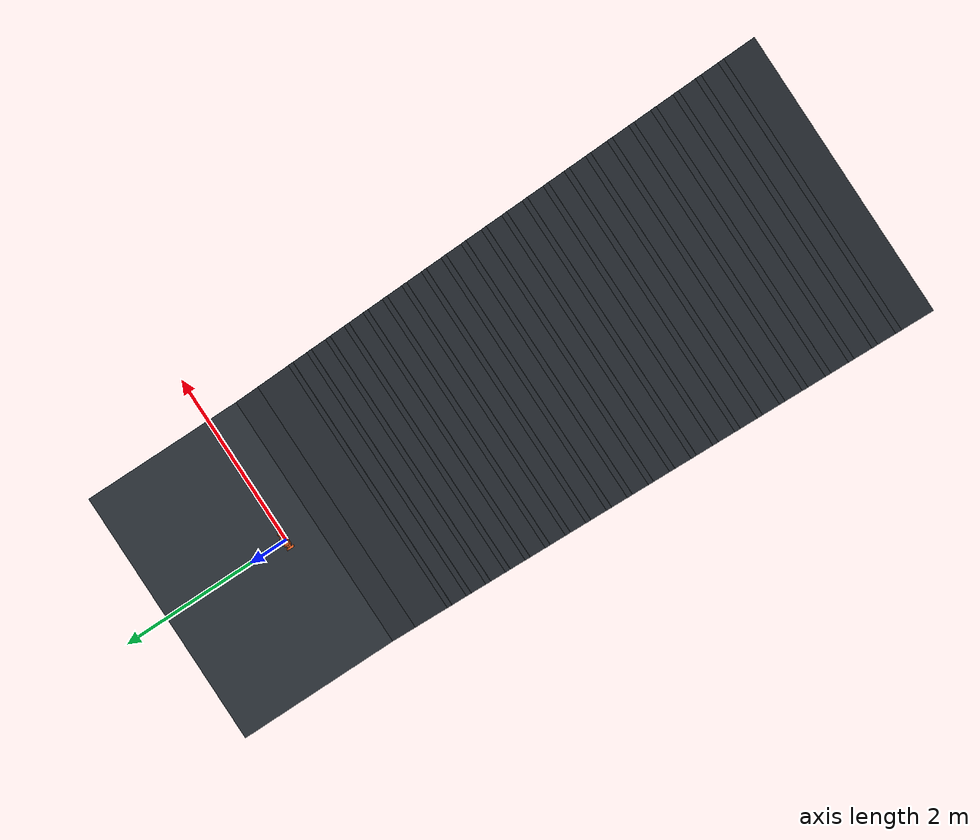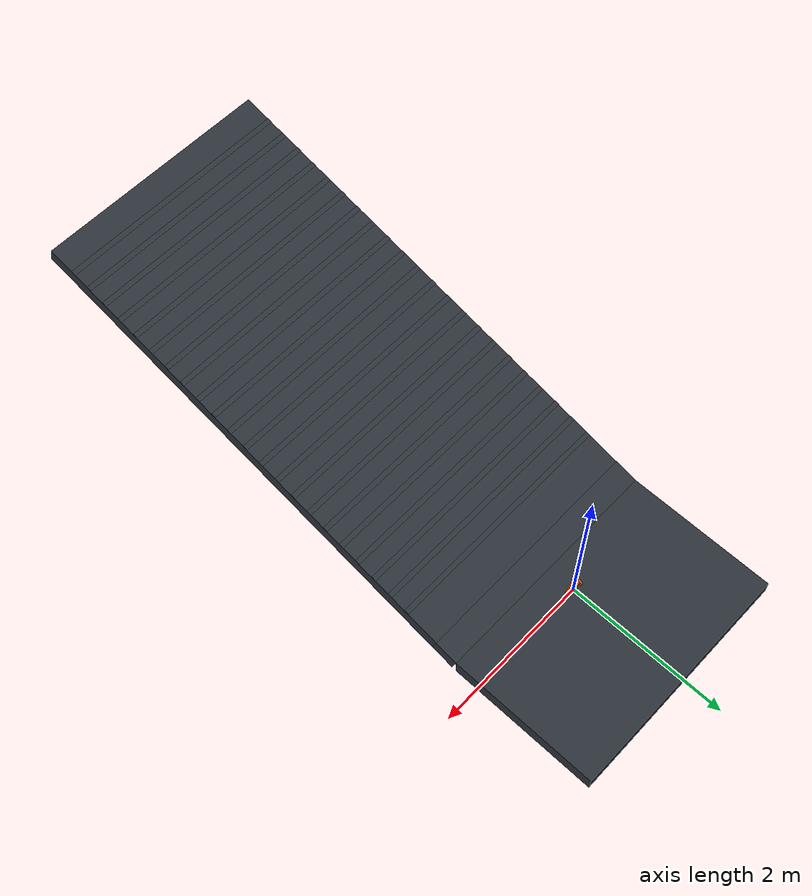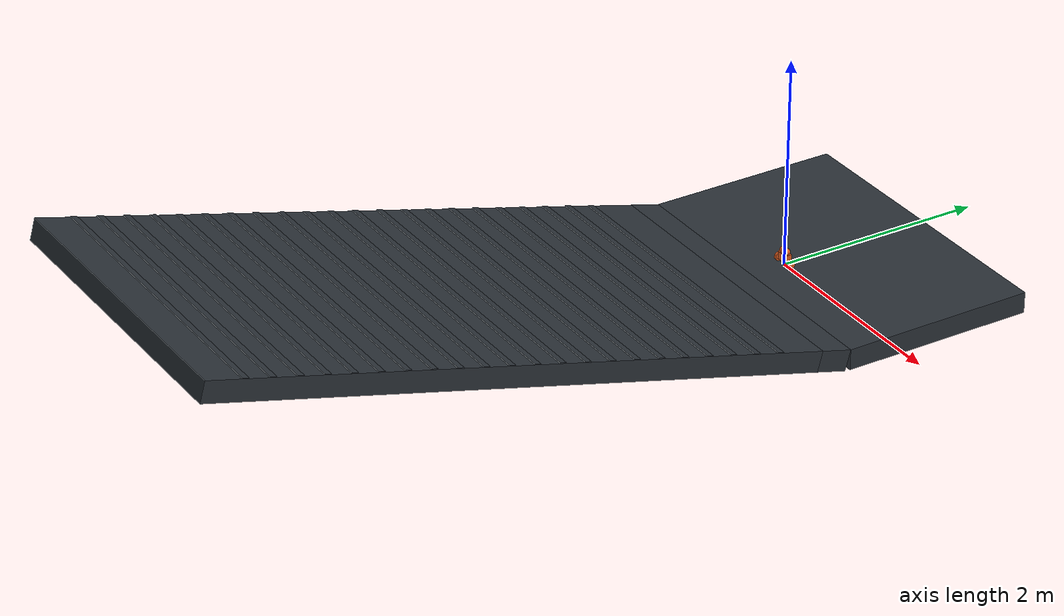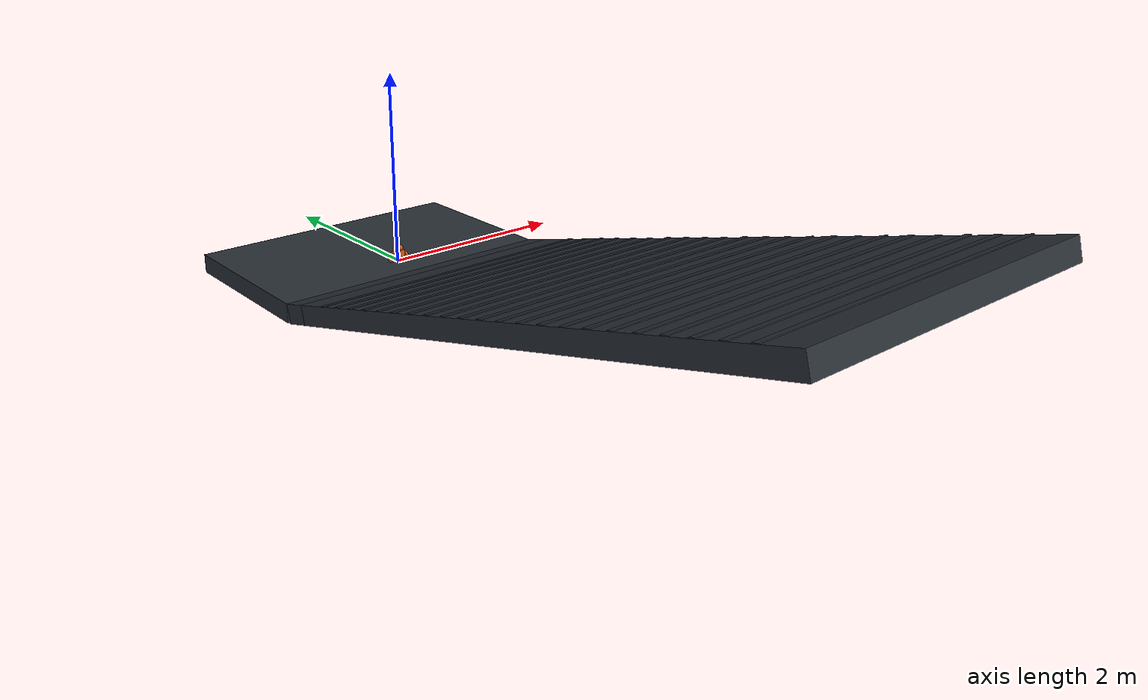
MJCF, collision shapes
<mujoco model="Stage4B rtrain_065_p15p0">
  <compiler angle="radian" meshdir="../../../../assets/upstream_local" />
  <option timestep="0.001" integrator="implicitfast" gravity="0 0 -9.81" />
  <statistic center="0 0 0.05" extent="0.28" />
  <default>
    <default class="visual">
      <geom contype="0" conaffinity="0" group="2" />
    </default>
    <default class="collision">
      <geom group="3" rgba="0.85 0.35 0.12 0.25" solref="0.005 1" solimp="0.9 0.95 0.001" />
    </default>
  </default>
  <asset>
    <texture name="ground_tex" type="2d" builtin="checker" rgb1="0.22 0.25 0.28" rgb2="0.12 0.14 0.16" width="256" height="256" />
    <material name="ground_mat" texture="ground_tex" texrepeat="4 4" reflectance="0.15" />
    <mesh name="main_frame_mesh" file="main_frame.stl" scale="0.001 0.001 0.001" />
    <mesh name="wheel_base_mesh" file="wheel_base.stl" scale="0.001 0.001 0.001" />
    <mesh name="cover_mesh" file="cover.stl" scale="0.001 0.001 0.001" />
    <mesh name="motor_left_mesh" file="motor_left.stl" scale="0.001 0.001 0.001" />
    <mesh name="motor_right_mesh" file="motor_right.stl" scale="0.001 0.001 0.001" />
    <mesh name="mc33926_mesh" file="mc33926.stl" scale="0.001 0.001 0.001" />
    <mesh name="wheel_mesh" file="wheel.stl" scale="0.001 0.001 0.001" />
    <mesh name="adapter_left_mesh" file="adapter_left.stl" scale="0.001 0.001 0.001" />
    <mesh name="adapter_right_mesh" file="adapter_right.stl" scale="0.001 0.001 0.001" />
  </asset>
  <worldbody>
    <light pos="0 -0.5 0.8" dir="0 0.6 -1" diffuse="0.8 0.8 0.8" />
    <geom name="terrain_flat" type="box" pos="0 0.575 -0.1" size="1.5 0.925 0.1" material="ground_mat" friction="0.46254146 0.005 0.0001" condim="3" />
    <geom name="terrain_transition" type="box" pos="0 -0.520770778454 -0.0577697258635" euler="-0.261799387799 0 0" size="1.5 0.15 0.1" material="ground_mat" friction="0.46254146 0.005 0.0001" condim="3" />
    <geom name="terrain_constant_grade" type="box" pos="0 -3.56343713126 0.757510266209" euler="-0.261799387799 0 0" size="1.5 3 0.1" material="ground_mat" friction="0.46254146 0.005 0.0001" condim="3" />
    <geom name="terrain_rough_00" type="box" pos="0 -1.07350111542 0.19763455678" euler="-0.261799387799 0 0" size="1.5 0.0305755750023 0.00364445473708" material="ground_mat" friction="0.46254146 0.005 0.0001" condim="3" />
    <geom name="terrain_rough_01" type="box" pos="0 -1.31227637632 0.26161419511" euler="-0.261799387799 0 0" size="1.5 0.0305755750023 0.00364445473708" material="ground_mat" friction="0.46254146 0.005 0.0001" condim="3" />
    <geom name="terrain_rough_02" type="box" pos="0 -1.55105163721 0.325593833439" euler="-0.261799387799 0 0" size="1.5 0.0305755750023 0.00364445473708" material="ground_mat" friction="0.46254146 0.005 0.0001" condim="3" />
    <geom name="terrain_rough_03" type="box" pos="0 -1.78982689811 0.389573471769" euler="-0.261799387799 0 0" size="1.5 0.0305755750023 0.00364445473708" material="ground_mat" friction="0.46254146 0.005 0.0001" condim="3" />
    <geom name="terrain_rough_04" type="box" pos="0 -2.028602159 0.453553110098" euler="-0.261799387799 0 0" size="1.5 0.0305755750023 0.00364445473708" material="ground_mat" friction="0.46254146 0.005 0.0001" condim="3" />
    <geom name="terrain_rough_05" type="box" pos="0 -2.2673774199 0.517532748428" euler="-0.261799387799 0 0" size="1.5 0.0305755750023 0.00364445473708" material="ground_mat" friction="0.46254146 0.005 0.0001" condim="3" />
    <geom name="terrain_rough_06" type="box" pos="0 -2.5061526808 0.581512386757" euler="-0.261799387799 0 0" size="1.5 0.0305755750023 0.00364445473708" material="ground_mat" friction="0.46254146 0.005 0.0001" condim="3" />
    <geom name="terrain_rough_07" type="box" pos="0 -2.74492794169 0.645492025087" euler="-0.261799387799 0 0" size="1.5 0.0305755750023 0.00364445473708" material="ground_mat" friction="0.46254146 0.005 0.0001" condim="3" />
    <geom name="terrain_rough_08" type="box" pos="0 -2.98370320259 0.709471663416" euler="-0.261799387799 0 0" size="1.5 0.0305755750023 0.00364445473708" material="ground_mat" friction="0.46254146 0.005 0.0001" condim="3" />
    <geom name="terrain_rough_09" type="box" pos="0 -3.22247846348 0.773451301746" euler="-0.261799387799 0 0" size="1.5 0.0305755750023 0.00364445473708" material="ground_mat" friction="0.46254146 0.005 0.0001" condim="3" />
    <geom name="terrain_rough_10" type="box" pos="0 -3.46125372438 0.837430940075" euler="-0.261799387799 0 0" size="1.5 0.0305755750023 0.00364445473708" material="ground_mat" friction="0.46254146 0.005 0.0001" condim="3" />
    <geom name="terrain_rough_11" type="box" pos="0 -3.70002898527 0.901410578405" euler="-0.261799387799 0 0" size="1.5 0.0305755750023 0.00364445473708" material="ground_mat" friction="0.46254146 0.005 0.0001" condim="3" />
    <geom name="terrain_rough_12" type="box" pos="0 -3.93880424617 0.965390216734" euler="-0.261799387799 0 0" size="1.5 0.0305755750023 0.00364445473708" material="ground_mat" friction="0.46254146 0.005 0.0001" condim="3" />
    <geom name="terrain_rough_13" type="box" pos="0 -4.17757950707 1.02936985506" euler="-0.261799387799 0 0" size="1.5 0.0305755750023 0.00364445473708" material="ground_mat" friction="0.46254146 0.005 0.0001" condim="3" />
    <geom name="terrain_rough_14" type="box" pos="0 -4.41635476796 1.09334949339" euler="-0.261799387799 0 0" size="1.5 0.0305755750023 0.00364445473708" material="ground_mat" friction="0.46254146 0.005 0.0001" condim="3" />
    <geom name="terrain_rough_15" type="box" pos="0 -4.65513002886 1.15732913172" euler="-0.261799387799 0 0" size="1.5 0.0305755750023 0.00364445473708" material="ground_mat" friction="0.46254146 0.005 0.0001" condim="3" />
    <geom name="terrain_rough_16" type="box" pos="0 -4.89390528975 1.22130877005" euler="-0.261799387799 0 0" size="1.5 0.0305755750023 0.00364445473708" material="ground_mat" friction="0.46254146 0.005 0.0001" condim="3" />
    <geom name="terrain_rough_17" type="box" pos="0 -5.13268055065 1.28528840838" euler="-0.261799387799 0 0" size="1.5 0.0305755750023 0.00364445473708" material="ground_mat" friction="0.46254146 0.005 0.0001" condim="3" />
    <geom name="terrain_rough_18" type="box" pos="0 -5.37145581154 1.34926804671" euler="-0.261799387799 0 0" size="1.5 0.0305755750023 0.00364445473708" material="ground_mat" friction="0.46254146 0.005 0.0001" condim="3" />
    <geom name="terrain_rough_19" type="box" pos="0 -5.61023107244 1.41324768504" euler="-0.261799387799 0 0" size="1.5 0.0305755750023 0.00364445473708" material="ground_mat" friction="0.46254146 0.005 0.0001" condim="3" />
    <geom name="terrain_rough_20" type="box" pos="0 -5.84900633333 1.47722732337" euler="-0.261799387799 0 0" size="1.5 0.0305755750023 0.00364445473708" material="ground_mat" friction="0.46254146 0.005 0.0001" condim="3" />
    <geom name="terrain_rough_21" type="box" pos="0 -6.08778159423 1.5412069617" euler="-0.261799387799 0 0" size="1.5 0.0305755750023 0.00364445473708" material="ground_mat" friction="0.46254146 0.005 0.0001" condim="3" />
    <body name="chassis" pos="0 0 0.043">
      <freejoint name="root" />
      <inertial pos="0.0001592717873 -0.001394466535 0.03368627387" mass="0.8173706489" fullinertia="0.0009508052638 0.001636345835 0.0009938057434 -1.163464906e-07 -4.840496598e-06 3.454944565e-05" />
      <geom name="main_frame_visual" class="visual" type="mesh" mesh="main_frame_mesh" rgba="0.12 0.42 0.72 1" />
      <geom name="wheel_base_visual" class="visual" type="mesh" mesh="wheel_base_mesh" rgba="0.95 0.50 0.10 1" />
      <geom name="cover_visual" class="visual" type="mesh" mesh="cover_mesh" rgba="0.18 0.72 0.32 0.72" />
      <geom name="motor_left_visual" class="visual" type="mesh" mesh="motor_left_mesh" rgba="0.45 0.47 0.50 1" />
      <geom name="motor_right_visual" class="visual" type="mesh" mesh="motor_right_mesh" rgba="0.45 0.47 0.50 1" />
      <geom name="mc33926_visual" class="visual" type="mesh" mesh="mc33926_mesh" rgba="0.08 0.36 0.18 1" />
      <geom name="battery_1_visual" class="visual" type="box" pos="0 -0.012 0.038" size="0.035 0.007 0.025" rgba="0.15 0.25 0.75 1" />
      <geom name="battery_2_visual" class="visual" type="box" pos="0 0.012 0.038" size="0.035 0.007 0.025" rgba="0.15 0.25 0.75 1" />
      <geom name="electronics_lump_visual" class="visual" type="box" pos="0 -0.024 0.067" size="0.035 0.006 0.0425" rgba="0.10 0.42 0.20 0.65" />
      <geom name="wheel_base_collision" class="collision" type="box" pos="0 0.0005 0.0042" size="0.074 0.0201 0.0198" />
      <geom name="lower_chassis_collision" class="collision" type="box" pos="0.001 -0.0015 0.038" size="0.0595 0.0325 0.038" />
      <geom name="upper_chassis_collision" class="collision" type="capsule" fromto="-0.024 -0.0015 0.096 0.026 -0.0015 0.096" size="0.033" />
      <site name="imu_site" type="box" pos="0 0 0.020" quat="1 0 0 0" size="0.004 0.003 0.001" rgba="1 0.15 0.05 1" />
      <body name="left_wheel" pos="-0.0885 0 0">
        <joint name="left_wheel_hinge" type="hinge" axis="1 0 0" damping="0.002" frictionloss="0.002" />
        <inertial pos="0.001407549168 -2.310217342e-08 4.024972882e-05" mass="0.1051" fullinertia="8.559060347e-05 4.760138372e-05 4.763051958e-05 2.677568832e-11 -3.525425309e-08 -1.463149106e-11" />
        <geom name="left_wheel_visual" class="visual" type="mesh" mesh="wheel_mesh" rgba="0.04 0.05 0.06 1" />
        <geom name="left_adapter_visual" class="visual" type="mesh" mesh="adapter_left_mesh" rgba="0.12 0.48 0.82 1" />
        <geom name="left_wheel_collision" class="collision" type="cylinder" size="0.042 0.012" quat="0.7071067812 0 0.7071067812 0" friction="0.46254146 0.005 0.0001" />
      </body>
      <body name="right_wheel" pos="0.0885 0 0">
        <joint name="right_wheel_hinge" type="hinge" axis="1 0 0" damping="0.002" frictionloss="0.002" />
        <inertial pos="-0.001407437868 -2.310217342e-08 -4.019113045e-05" mass="0.1051" fullinertia="8.559060397e-05 4.760141714e-05 4.763055251e-05 -2.601653908e-11 -3.526339188e-08 1.57007511e-11" />
        <geom name="right_wheel_visual" class="visual" type="mesh" mesh="wheel_mesh" rgba="0.04 0.05 0.06 1" />
        <geom name="right_adapter_visual" class="visual" type="mesh" mesh="adapter_right_mesh" rgba="0.12 0.48 0.82 1" />
        <geom name="right_wheel_collision" class="collision" type="cylinder" size="0.042 0.012" quat="0.7071067812 0 0.7071067812 0" friction="0.46254146 0.005 0.0001" />
      </body>
    </body>
  </worldbody>
  <actuator>
    <motor name="left_wheel_torque" joint="left_wheel_hinge" gear="1" ctrllimited="true" ctrlrange="-0.63 0.63" forcelimited="true" forcerange="-0.63 0.63" />
    <motor name="right_wheel_torque" joint="right_wheel_hinge" gear="1" ctrllimited="true" ctrlrange="-0.63 0.63" forcelimited="true" forcerange="-0.63 0.63" />
  </actuator>
  <sensor>
    <accelerometer name="imu_accelerometer" site="imu_site" />
    <gyro name="imu_gyro" site="imu_site" />
    <jointpos name="left_wheel_angle" joint="left_wheel_hinge" />
    <jointpos name="right_wheel_angle" joint="right_wheel_hinge" />
  </sensor>
  <keyframe>
    <key name="upright" qpos="0 0 0.043 1 0 0 0 0 0" />
  </keyframe>
</mujoco>
